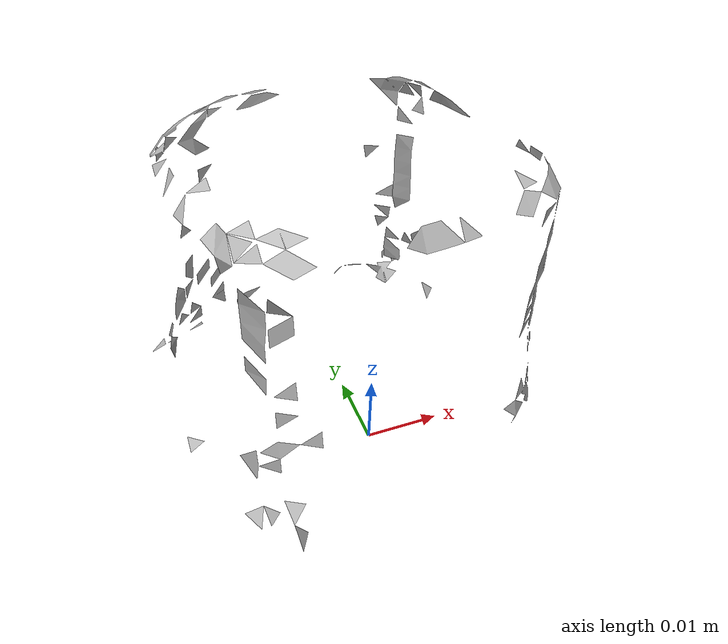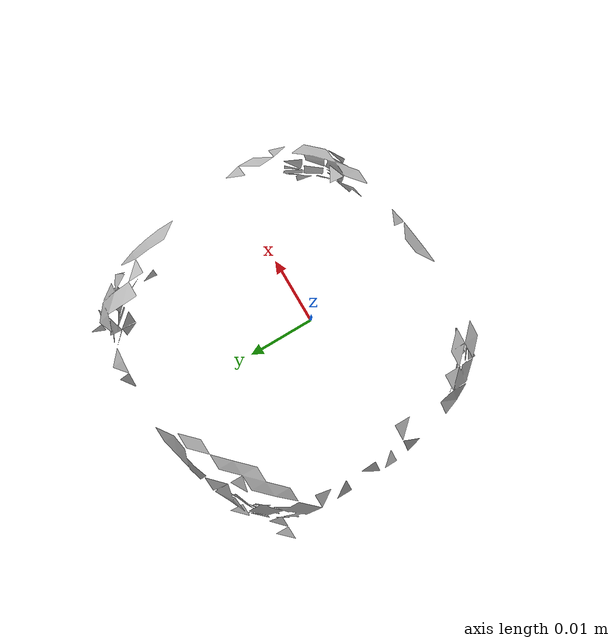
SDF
<?xml version='1.0'?>
<sdf version="1.4">
  <model name="j_lego_duplo">
    <static>false</static>
    <link name="link">
      <inertial>
        <pose>-0.0021151141598171976 0.004693648613480238 0.02532041738817613 -1.4729473698776216 -1.5010686150190196 1.5544267276959667</pose>
        <mass>4.6316286589237607e-05</mass>
        <inertia>
          <ixx>9.920232668398195e-09</ixx>
          <ixy>5.169878828456423e-25</ixy>
          <ixz>1.4863401631812216e-25</ixz>
          <iyy>7.582023878987082e-09</iyy>
          <iyz>-1.9508214641753534e-25</iyz>
          <izz>7.51993628461366e-09</izz>
        </inertia>
      </inertial>
      <collision name="collision">
        <geometry>
          <mesh>
            <!-- Use a downsampled mesh for collisions -->
            <uri>model://073-j_lego_duplo/tsdf/textured.obj</uri>
          </mesh>
        </geometry>
        <surface>
      </surface>
      </collision>
      <visual name="visual">
        <geometry>
          <mesh>
            <uri>model://073-j_lego_duplo/tsdf/textured.obj</uri>
          </mesh>
        </geometry>
        <material>
          <script>
            <uri>model://073-j_lego_duplo/j_lego_duplo.material</uri>
            <name>j_lego_duplo</name>
          </script>
        </material>
      </visual>
    </link>
    <plugin name="ROSTFPublisher" filename="ROSRobotPosePublisherPlugin.so">
    </plugin>
  </model>
</sdf>
